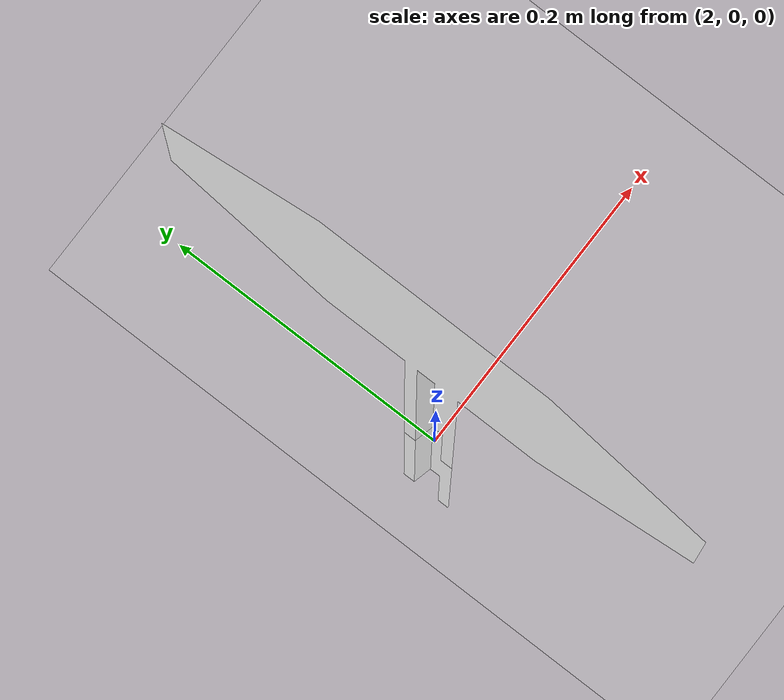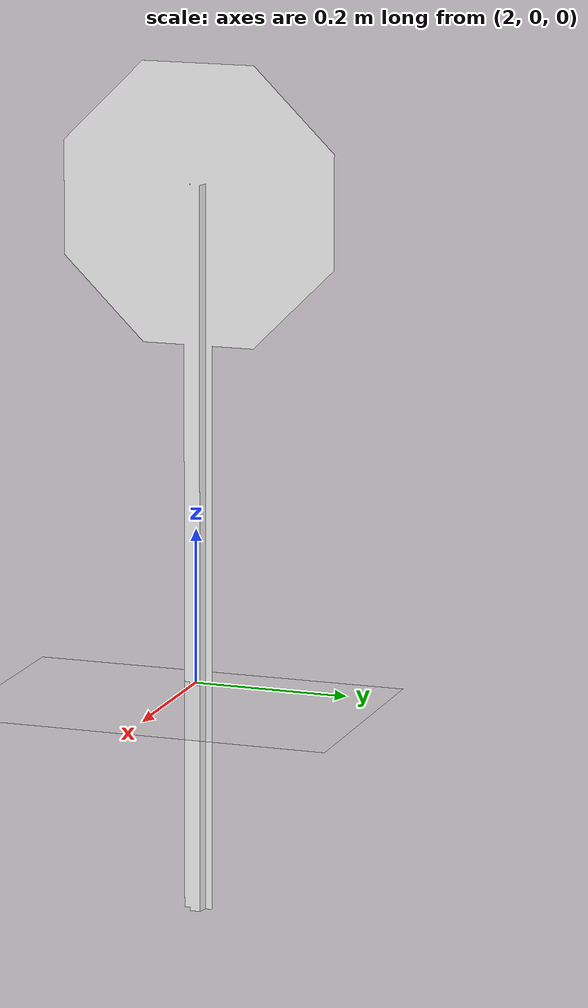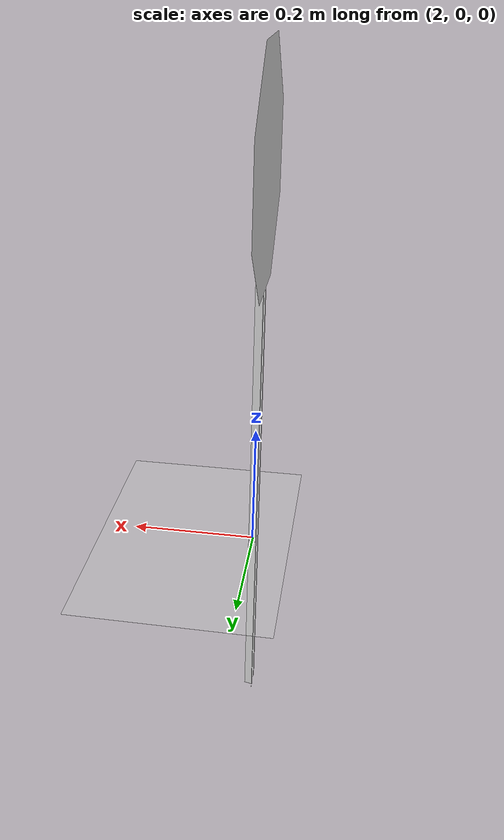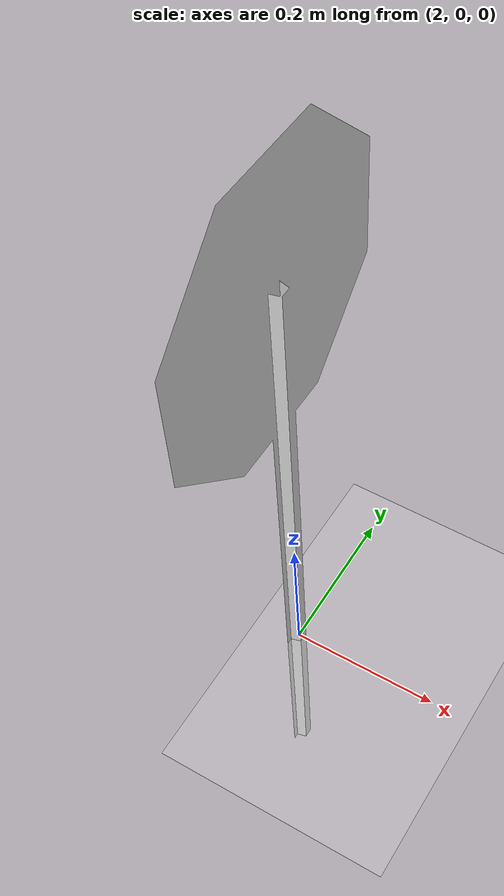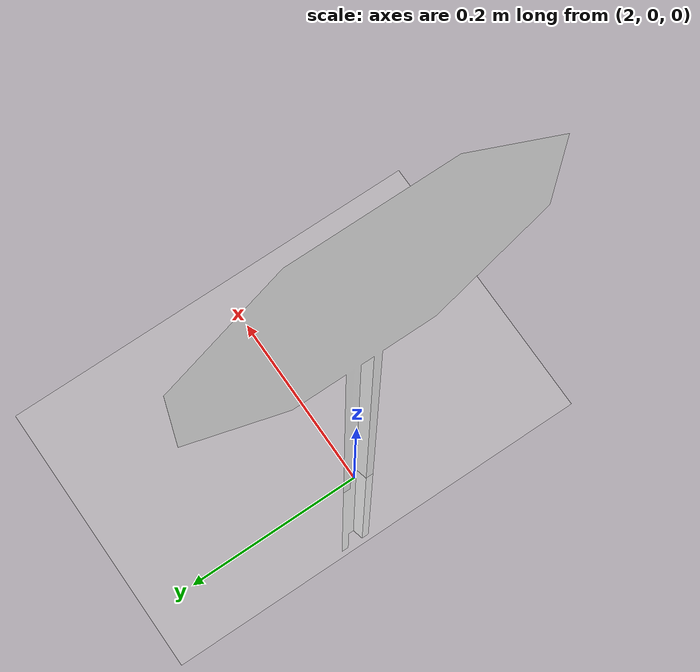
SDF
<?xml version="1.0"?>
<sdf version="1.6">
  <world name="default">
    <include><uri>model://sun</uri></include>
    <include><uri>model://ground_plane</uri></include>
    <scene>
      <ambient>0.6 0.6 0.6 1</ambient>
      <background>0.72 0.82 0.92 1</background>
      <shadows>false</shadows>
    </scene>
    <physics type="ode">
      <max_step_size>0.001</max_step_size>
      <real_time_update_rate>1000</real_time_update_rate>
    </physics>
    <gui>
      <camera name="user_camera">
        <pose>3 -4 2.2 0 0.4 2.21</pose>
        <view_controller>orbit</view_controller>
      </camera>
    </gui>
    <model name="demo_stop_sign">
      <static>true</static>
      <pose>2.0 0.0 -0.3 0.0 0.0 -1.57079632679</pose>
      <link name="sign">
        <visual name="sign_visual">
          <geometry><mesh>
            <uri>model://stop_sign/meshes/stop_sign.dae</uri>
            <scale>0.6 0.6 0.6</scale>
          </mesh></geometry>
          <material><script>
            <uri>model://stop_sign/materials/scripts</uri>
            <uri>model://stop_sign/materials/textures</uri>
            <name>StopSign/Diffuse</name>
          </script></material>
        </visual>
        <collision name="sign_collision">
          <geometry><mesh>
            <uri>model://stop_sign/meshes/stop_sign.dae</uri>
            <scale>0.6 0.6 0.6</scale>
          </mesh></geometry>
        </collision>
      </link>
    </model>
  </world>
</sdf>
